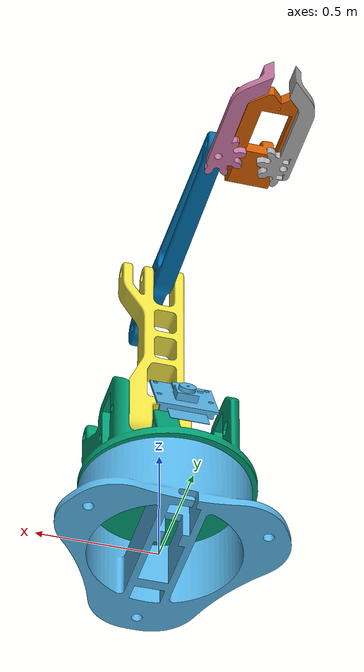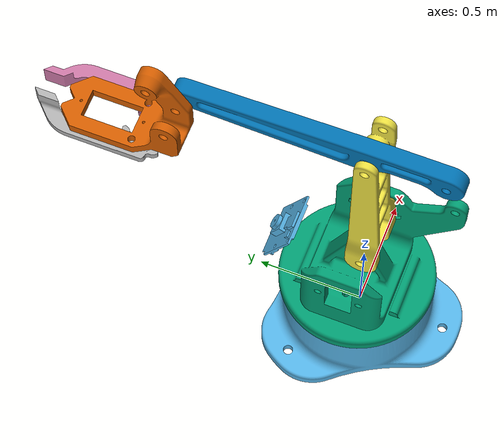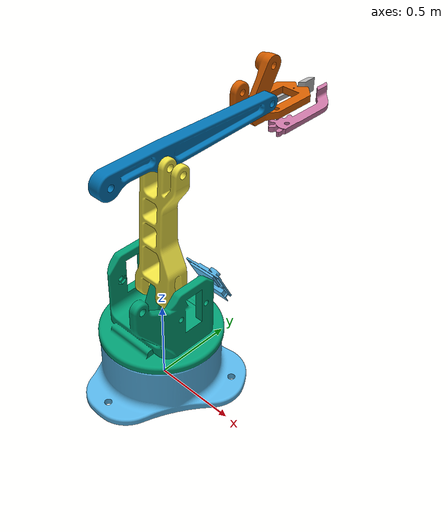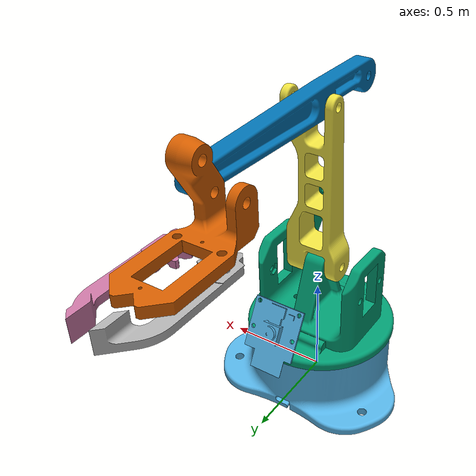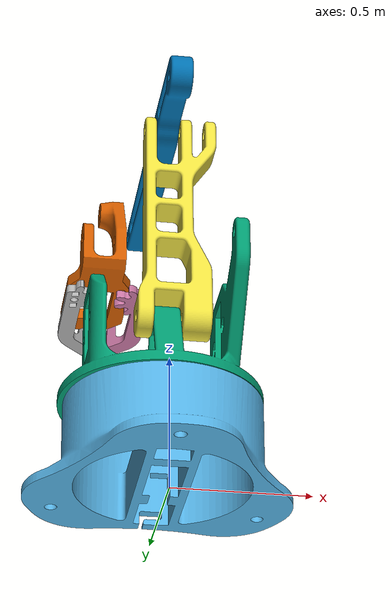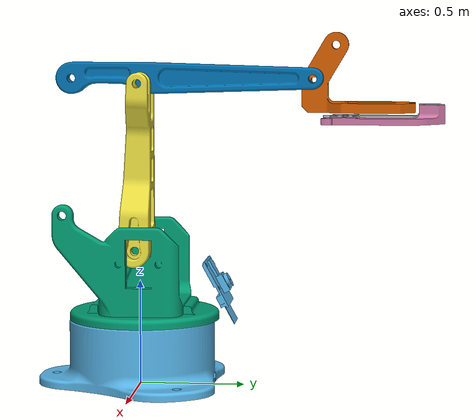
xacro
<?xml version='1.0'?>

<robot xmlns:xacro="http://www.ros.org/wiki/xacro" name="armvision">

    <xacro:property name="PI" value="3.14159" />
    <xacro:property name="effort" value="30.0" />
    <xacro:property name="velocity" value="10.0" />

    <!-- Solid box approximation: x y z are the box dimensions, com is the center of mass -->
    <xacro:macro name="box_inertial" params="mass x y z com">
        <inertial>
            <origin rpy="0 0 0" xyz="${com}" />
            <mass value="${mass}" />
            <inertia ixx="${mass / 12.0 * (y*y + z*z)}" ixy="0.0" ixz="0.0"
                iyy="${mass / 12.0 * (x*x + z*z)}" iyz="0.0"
                izz="${mass / 12.0 * (x*x + y*y)}"
            />
        </inertial>
    </xacro:macro>
    <link name="world" />

    <link name="base_link">
        <xacro:box_inertial mass="1.0" x="0.3" y="0.3" z="0.3" com="0 0 0.15" />
        <visual>
            <origin rpy="0 0 0" xyz="-0.5 -0.5 0" />
            <geometry>
                <mesh filename="package://armvision_description/meshes/basement.STL"
                    scale="0.01 0.01 0.01" />
            </geometry>
        </visual>
        <collision>
            <origin rpy="0 0 0" xyz="-0.5 -0.5 0" />
            <geometry>
                <mesh filename="package://armvision_description/meshes/basement.STL"
                    scale="0.01 0.01 0.01" />
            </geometry>
        </collision>
    </link>

    <joint name="virtual_joint" type="fixed">
        <parent link="world" />
        <child link="base_link" />
        <origin rpy="0 0 0" xyz="0 0 0" />
    </joint>

    <link name="base_plate">
        <xacro:box_inertial mass="0.1" x="0.2" y="0.2" z="0.35" com="0 0 0.175" />
        <visual>
            <origin rpy="0 0 0" xyz="-0.39 -0.39 -0.56" />
            <geometry>
                <mesh filename="package://armvision_description/meshes/base_plate.STL"
                    scale="0.01 0.01 0.01" />
            </geometry>
        </visual>
        <collision>
            <origin rpy="0 0 0" xyz="-0.39 -0.39 -0.56" />
            <geometry>
                <mesh filename="package://armvision_description/meshes/base_plate.STL"
                    scale="0.01 0.01 0.01" />
            </geometry>
        </collision>
    </link>

    <joint name="joint_1" type="revolute">
        <parent link="base_link" />
        <child link="base_plate" />
        <axis xyz="0 0 1" />
        <origin rpy="0 0 0" xyz="0 0 0.307" />
        <limit lower="-${PI/2}" upper="${PI/2}" effort="${effort}" velocity="${velocity}" />
    </joint>

    <link name="forward_drive_arm">
        <xacro:box_inertial mass="0.1" x="0.05" y="0.05" z="0.8" com="0 0 0.4" />
        <visual>
            <origin rpy="0 -${PI/2} ${PI/2}" xyz="0.19 0.06 -0.08" />
            <geometry>
                <mesh filename="package://armvision_description/meshes/forward_drive_arm.STL"
                    scale="0.01 0.01 0.01" />
            </geometry>
        </visual>
        <collision>
            <origin rpy="0 -${PI/2} ${PI/2}" xyz="0.19 0.06 -0.08" />
            <geometry>
                <mesh filename="package://armvision_description/meshes/forward_drive_arm.STL"
                    scale="0.01 0.01 0.01" />
            </geometry>
        </collision>
    </link>

    <joint name="joint_2" type="revolute">
        <parent link="base_plate" />
        <child link="forward_drive_arm" />
        <axis xyz="1 0 0" />
        <origin rpy="0 0 0" xyz="-0.02 0 0.35" />
        <limit lower="-${PI/2}" upper="${PI/2}" effort="${effort}" velocity="${velocity}" />
    </joint>

    <link name="horizontal_arm">
        <xacro:box_inertial mass="0.1" x="0.05" y="0.82" z="0.05" com="0 0.41 0" />
        <visual>
            <origin rpy="${PI/2} 0 ${PI/2}" xyz="-0.03 -0.4 -0.06" />
            <geometry>
                <mesh filename="package://armvision_description/meshes/horizontal_arm.STL"
                    scale="0.01 0.01 0.01" />
            </geometry>
        </visual>
        <collision>
            <origin rpy="${PI/2} 0 ${PI/2}" xyz="-0.03 -0.4 -0.06" />
            <geometry>
                <mesh filename="package://armvision_description/meshes/horizontal_arm.STL"
                    scale="0.01 0.01 0.01" />
            </geometry>
        </collision>
    </link>

    <joint name="joint_3" type="revolute">
        <parent link="forward_drive_arm" />
        <child link="horizontal_arm" />
        <axis xyz="1 0 0" />
        <origin rpy="0 0 0" xyz="0 0 0.8" />
        <limit lower="-${PI/2}" upper="${PI/2}" effort="${effort}" velocity="${velocity}" />
    </joint>

    <link name="claw_support">
        <xacro:box_inertial mass="0.05" x="0.1" y="0.1" z="0.1" com="0 0 0" />
        <visual>
            <origin rpy="0 0 ${PI/2}" xyz="0 -0.05 -0.15" />
            <geometry>
                <mesh filename="package://armvision_description/meshes/claw_support.STL"
                    scale="0.01 0.01 0.01" />
            </geometry>
        </visual>
        <collision>
            <origin rpy="0 0 ${PI/2}" xyz="0 -0.05 -0.15" />
            <geometry>
                <mesh filename="package://armvision_description/meshes/claw_support.STL"
                    scale="0.01 0.01 0.01" />
            </geometry>
        </collision>
    </link>

    <joint name="horizontal_arm_to_claw_support" type="fixed">
        <parent link="horizontal_arm" />
        <child link="claw_support" />
        <origin rpy="0 0 0" xyz="0 0.82 0" />
    </joint>

    <link name="gripper_right">
        <xacro:box_inertial mass="0.01" x="0.02" y="0.1" z="0.02" com="0 0 0" />
        <visual>
            <origin rpy="0 0 -${PI/2}" xyz="-0.1 0.5 -0.1" />
            <geometry>
                <mesh filename="package://armvision_description/meshes/right_finger.STL"
                    scale="0.01 0.01 0.01" />
            </geometry>
        </visual>
        <collision>
            <origin rpy="0 0 -${PI/2}" xyz="-0.1 0.5 -0.1" />
            <geometry>
                <mesh filename="package://armvision_description/meshes/right_finger.STL"
                    scale="0.01 0.01 0.01" />
            </geometry>
        </collision>
    </link>

    <link name="gripper_left">
        <xacro:box_inertial mass="0.01" x="0.02" y="0.1" z="0.02" com="0 0 0" />
        <visual>
            <origin rpy="0 0 -${PI/2}" xyz="-0.04 0.5 -0.1" />
            <geometry>
                <mesh filename="package://armvision_description/meshes/left_finger.STL"
                    scale="0.01 0.01 0.01" />
            </geometry>
        </visual>
        <collision>
            <origin rpy="0 0 -${PI/2}" xyz="-0.04 0.5 -0.1" />
            <geometry>
                <mesh filename="package://armvision_description/meshes/left_finger.STL"
                    scale="0.01 0.01 0.01" />
            </geometry>
        </collision>
    </link>

    <joint name="joint_4" type="fixed">

        <parent link="claw_support" />
        <child link="gripper_right" />
        <axis xyz="0 0 1" />
        <origin rpy="0 0 0" xyz="0.04 0.13 -0.1" />
    </joint>
    <joint name="joint_5" type="fixed">
        <parent link="claw_support" />
        <child link="gripper_left" />
        <axis xyz="0 0 1" />
        <origin rpy="0 0 0" xyz="-0.22 0.13 -0.1" />
    </joint>

    <link name="end_effector" />

    <joint name="claw_support_to_end_effector" type="fixed">
        <parent link="claw_support" />
        <child link="end_effector" />
        <origin xyz="-0.09 0.13 -0.1" rpy="0 0 0" />
    </joint>

    <link name="rgb_camera">
        <xacro:box_inertial mass="0.001" x="0.03" y="0.03" z="0.03" com="0 0 0" />
        <visual>
            <origin rpy="-1.57 0 -1.57" xyz="-0.1 0.125 0.15" />
            <geometry>
                <mesh filename="package://armvision_description/meshes/pi_camera.STL"
                    scale="0.01 0.01 0.01" />
            </geometry>
        </visual>
    </link>

    <joint name="plate_to_camera" type="fixed">
        <parent link="base_plate" />
        <child link="rgb_camera" />
        <origin xyz="0 0.45 0.2" rpy="0 -0.5 1.57" />
    </joint>

    <link name="left_camera" />
    <joint name="rgb_to_left_camera" type="fixed">
        <parent link="rgb_camera" />
        <child link="left_camera" />
        <origin xyz="-0.03 0 0" rpy="0 0 0" />
    </joint>

    <link name="right_camera" />
    <joint name="rgb_to_right_camera" type="fixed">
        <parent link="rgb_camera" />
        <child link="right_camera" />
        <origin xyz="0.03 0 0" rpy="0 0 0" />
    </joint>

</robot>
